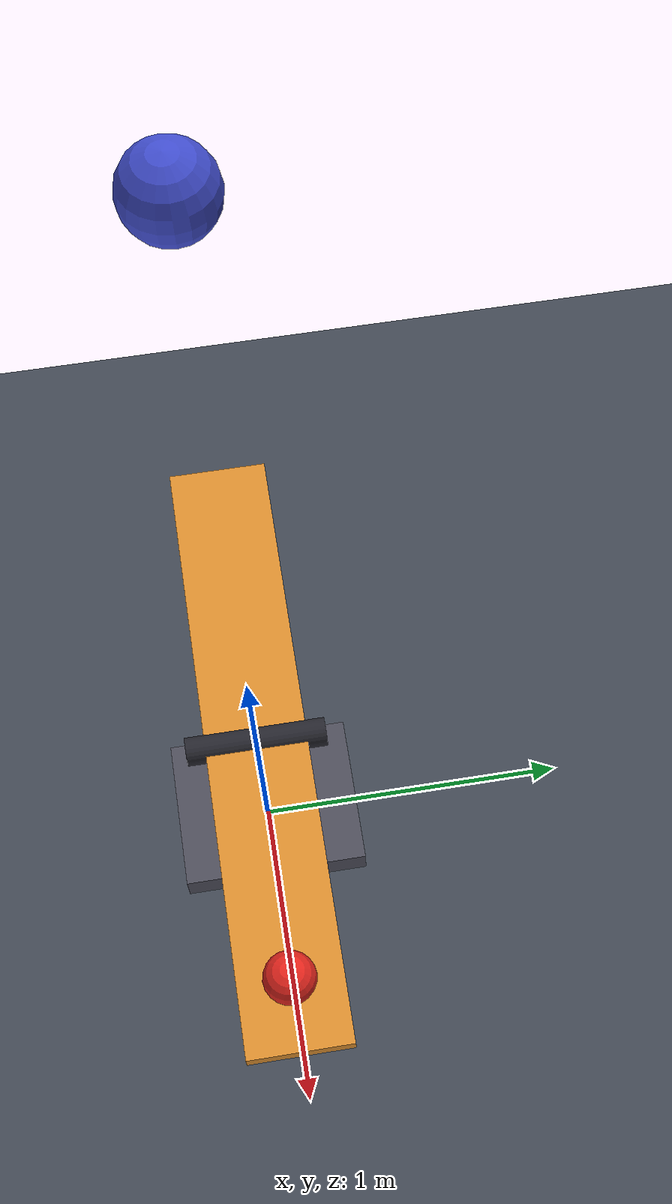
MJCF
<mujoco model="gravity_seesaw_launcher">
  <compiler angle="degree"/>
  <option timestep="0.002" gravity="0 0 -9.81" integrator="implicitfast" solver="Newton" iterations="100" tolerance="1e-10"/>
  <size njmax="1000" nconmax="200"/>

  <worldbody>
    <light name="overhead_light" pos="0 -3 5" dir="0 0 -1"/>
    <geom name="floor" type="plane" size="5 5 0.1" rgba="0.25 0.28 0.32 1" friction="0.8 0.005 0.0001" solref="0.006 1" solimp="0.98 0.99 0.001"/>

    <body name="support" pos="0 0 0">
      <geom name="support_base" type="box" pos="0 0 0.05" size="0.25 0.3 0.05" contype="0" conaffinity="0" rgba="0.3 0.3 0.35 1"/>
      <geom name="support_column" type="box" pos="0 0 0.3" size="0.055 0.12 0.25" contype="0" conaffinity="0" rgba="0.4 0.4 0.45 1"/>
      <geom name="support_axle" type="cylinder" pos="0 0 0.6" quat="0.70710678 0.70710678 0 0" size="0.045 0.22" contype="0" conaffinity="0" rgba="0.15 0.15 0.18 1"/>
    </body>

    <body name="seesaw" pos="0 0 0.6">
      <joint name="seesaw_hinge" type="hinge" axis="0 1 0" limited="true" range="-28 0" damping="0.02" armature="0.001" solreflimit="0.004 1" solimplimit="0.99 0.999 0.001"/>
      <geom name="seesaw_beam" type="box" size="1 0.16 0.025" mass="0.12" rgba="0.85 0.55 0.18 1" friction="0.35 0.002 0.0001" condim="3" solref="0.004 1" solimp="0.98 0.99 0.001"/>
    </body>

    <body name="weight" pos="-0.8 0 2.2">
      <freejoint name="weight_free"/>
      <geom name="weight_sphere" type="sphere" size="0.14" mass="1" rgba="0.25 0.3 0.8 1" friction="0.35 0.002 0.0001" condim="3" solref="0.004 1" solimp="0.98 0.99 0.001"/>
    </body>

    <body name="ball" pos="0.8 0 0.705">
      <freejoint name="ball_free"/>
      <geom name="ball" type="sphere" size="0.08" mass="0.1" rgba="0.9 0.15 0.12 1" friction="0.25 0.002 0.0001" condim="3" solref="0.004 1" solimp="0.98 0.99 0.001"/>
    </body>
  </worldbody>

  <keyframe>
    <key name="start" qpos="0 -0.8 0 2.2 1 0 0 0 0.8 0 0.705 1 0 0 0" qvel="0 0 0 0 0 0 0 0 0 0 0 0 0"/>
  </keyframe>
</mujoco>
